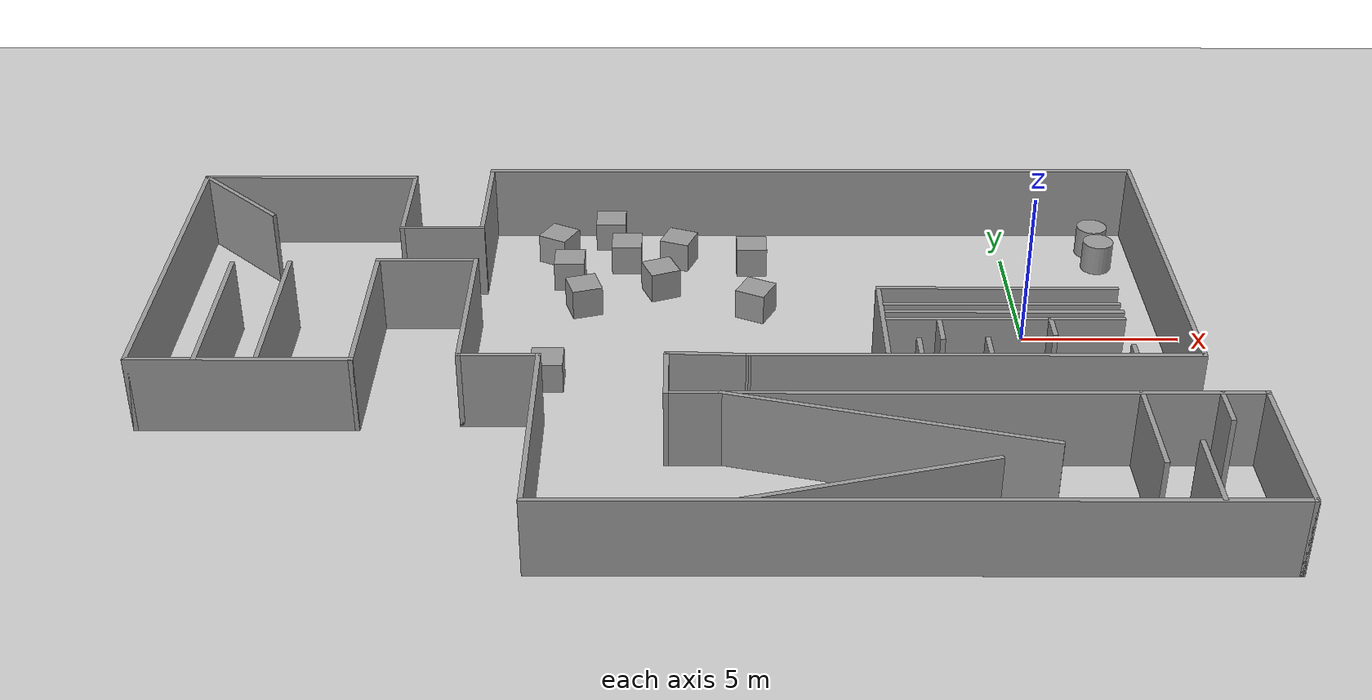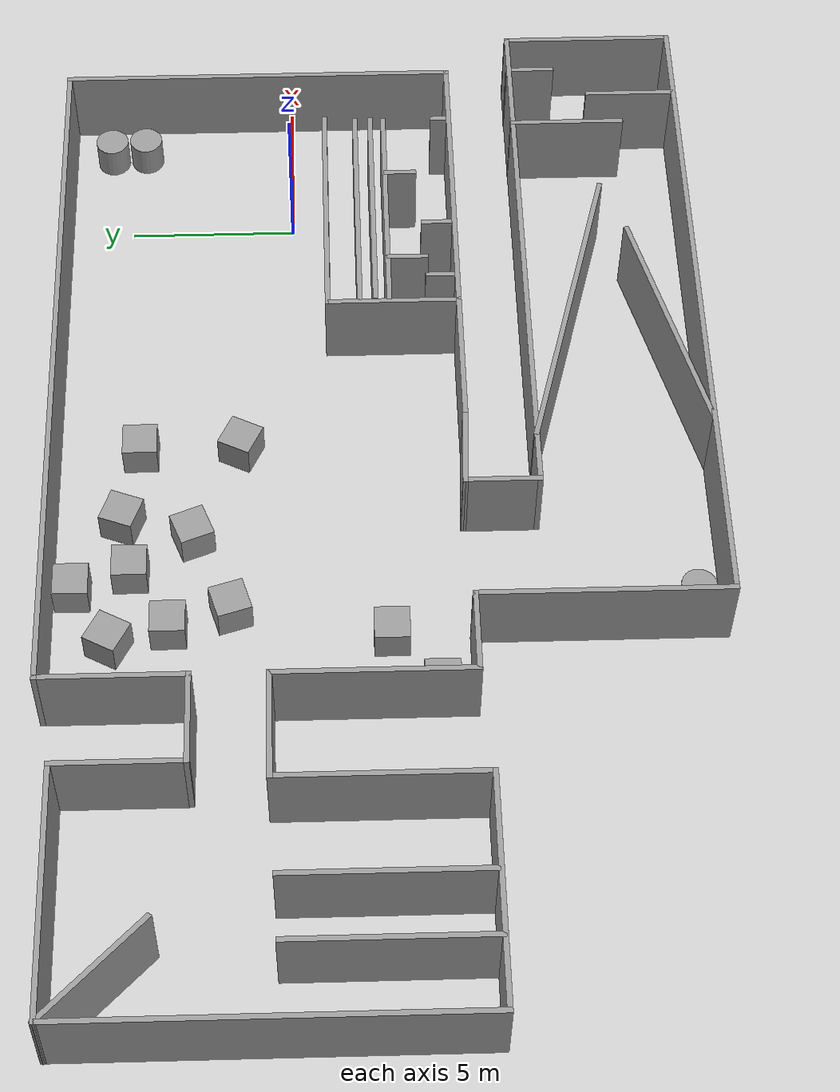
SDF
<sdf version="1.7">
 <world name="default">
  <light name="sun" type="directional">
   <pose>0 0 10 0 -0 0</pose>
   <diffuse>0.8 0.8 0.8 1</diffuse>
   <specular>0.2 0.2 0.2 1</specular>
   <attenuation>
    <range>1000</range>
    <constant>0.9</constant>
    <linear>0.01</linear>
    <quadratic>0.001</quadratic>
   </attenuation>
   <direction>-0.5 0.1 -0.9</direction>
   <spot><inner_angle>0</inner_angle><outer_angle>0</outer_angle><falloff>0</falloff></spot>
  </light>
  <model name="ground_plane">
   <static>1</static>
   <link name="link">
    <collision name="collision">
     <geometry><plane><normal>0 0 1</normal><size>100 100</size></plane></geometry>
     <surface>
      <contact><collide_bitmask>65535</collide_bitmask></contact>
      <friction><ode><mu>100</mu><mu2>50</mu2></ode></friction>
     </surface>
    </collision>
    <visual name="visual">
     <cast_shadows>0</cast_shadows>
     <geometry><plane><normal>0 0 1</normal><size>100 100</size></plane></geometry>
     <material>
      <script><uri>file://media/materials/scripts/gazebo.material</uri><name>Gazebo/Grey</name></script>
     </material>
    </visual>
   </link>
  </model>
  <gravity>0 0 -9.8</gravity>
  <magnetic_field>6e-06 2.3e-05 -4.2e-05</magnetic_field>
  <atmosphere type="adiabatic"/>
  <physics type="ode">
   <max_step_size>0.001</max_step_size>
   <real_time_factor>1</real_time_factor>
   <real_time_update_rate>1000</real_time_update_rate>
  </physics>
  <scene><ambient>0.4 0.4 0.4 1</ambient><background>0.7 0.7 0.7 1</background><shadows>1</shadows></scene>
  <spherical_coordinates>
   <surface_model>EARTH_WGS84</surface_model>
   <latitude_deg>0</latitude_deg>
   <longitude_deg>0</longitude_deg>
   <elevation>0</elevation>
   <heading_deg>0</heading_deg>
  </spherical_coordinates>
  <model name="Untitled">
   <pose>-10.6675 -2.513 0 0 -0 0</pose>
   <link name="Wall_0">
    <collision name="Wall_0_Collision">
     <geometry><box><size>13.5 0.15 2.5</size></box></geometry>
     <pose>0 0 1.25 0 -0 0</pose>
    </collision>
    <visual name="Wall_0_Visual">
     <pose>0 0 1.25 0 -0 0</pose>
     <geometry><box><size>13.5 0.15 2.5</size></box></geometry>
     <material>
      <script><uri>file://media/materials/scripts/gazebo.material</uri><name>Gazebo/Grey</name></script>
      <ambient>1 1 1 1</ambient>
     </material>
     <meta><layer>0</layer></meta>
    </visual>
    <pose>8.44053 -2.375 0 0 -0 3.14159</pose>
   </link>
   <link name="Wall_10">
    <collision name="Wall_10_Collision">
     <geometry><box><size>6 0.15 2.5</size></box></geometry>
     <pose>0 0 1.25 0 -0 0</pose>
    </collision>
    <visual name="Wall_10_Visual">
     <pose>0 0 1.25 0 -0 0</pose>
     <geometry><box><size>6 0.15 2.5</size></box></geometry>
     <material>
      <script><uri>file://media/materials/scripts/gazebo.material</uri><name>Gazebo/Grey</name></script>
      <ambient>1 1 1 1</ambient>
     </material>
     <meta><layer>0</layer></meta>
    </visual>
    <pose>-9.83447 0.299999 0 0 -0 1.5708</pose>
   </link>
   <link name="Wall_11">
    <collision name="Wall_11_Collision">
     <geometry><box><size>3.25 0.15 2.5</size></box></geometry>
     <pose>0 0 1.25 0 -0 0</pose>
    </collision>
    <visual name="Wall_11_Visual">
     <pose>0 0 1.25 0 -0 0</pose>
     <geometry><box><size>3.25 0.15 2.5</size></box></geometry>
     <material>
      <script><uri>file://media/materials/scripts/gazebo.material</uri><name>Gazebo/Grey</name></script>
      <ambient>1 1 1 1</ambient>
     </material>
     <meta><layer>0</layer></meta>
    </visual>
    <pose>-8.28447 3.225 0 0 -0 0</pose>
   </link>
   <link name="Wall_12">
    <collision name="Wall_12_Collision">
     <geometry><box><size>5.75 0.15 2.5</size></box></geometry>
     <pose>0 0 1.25 0 -0 0</pose>
    </collision>
    <visual name="Wall_12_Visual">
     <pose>0 0 1.25 0 -0 0</pose>
     <geometry><box><size>5.75 0.15 2.5</size></box></geometry>
     <material>
      <script><uri>file://media/materials/scripts/gazebo.material</uri><name>Gazebo/Grey</name></script>
      <ambient>1 1 1 1</ambient>
     </material>
     <meta><layer>0</layer></meta>
    </visual>
    <pose>-6.73447 0.424999 0 0 -0 -1.5708</pose>
   </link>
   <link name="Wall_15">
    <collision name="Wall_15_Collision">
     <geometry><box><size>2.5 0.15 2.5</size></box></geometry>
     <pose>0 0 1.25 0 -0 0</pose>
    </collision>
    <visual name="Wall_15_Visual">
     <pose>0 0 1.25 0 -0 0</pose>
     <geometry><box><size>2.5 0.15 2.5</size></box></geometry>
     <material>
      <script><uri>file://media/materials/scripts/gazebo.material</uri><name>Gazebo/Grey</name></script>
      <ambient>1 1 1 1</ambient>
     </material>
     <meta><layer>0</layer></meta>
    </visual>
    <pose>-5.55947 -2.375 0 0 -0 0</pose>
   </link>
   <link name="Wall_16">
    <collision name="Wall_16_Collision">
     <geometry><box><size>7.25 0.15 2.5</size></box></geometry>
     <pose>0 0 1.25 0 -0 0</pose>
    </collision>
    <visual name="Wall_16_Visual">
     <pose>0 0 1.25 0 -0 0</pose>
     <geometry><box><size>7.25 0.15 2.5</size></box></geometry>
     <material>
      <script><uri>file://media/materials/scripts/gazebo.material</uri><name>Gazebo/Grey</name></script>
      <ambient>1 1 1 1</ambient>
     </material>
     <meta><layer>0</layer></meta>
    </visual>
    <pose>-4.38447 -5.925 0 0 -0 -1.5708</pose>
   </link>
   <link name="Wall_17">
    <collision name="Wall_17_Collision">
     <geometry><box><size>21 0.15 2.5</size></box></geometry>
     <pose>0 0 1.25 0 -0 0</pose>
    </collision>
    <visual name="Wall_17_Visual">
     <pose>0 0 1.25 0 -0 0</pose>
     <geometry><box><size>21 0.15 2.5</size></box></geometry>
     <material>
      <script><uri>file://media/materials/scripts/gazebo.material</uri><name>Gazebo/Grey</name></script>
      <ambient>1 1 1 1</ambient>
     </material>
     <meta><layer>0</layer></meta>
    </visual>
    <pose>6.04053 -9.475 0 0 -0 0</pose>
   </link>
   <link name="Wall_18">
    <collision name="Wall_18_Collision">
     <geometry><box><size>5.25 0.15 2.5</size></box></geometry>
     <pose>0 0 1.25 0 -0 0</pose>
    </collision>
    <visual name="Wall_18_Visual">
     <pose>0 0 1.25 0 -0 0</pose>
     <geometry><box><size>5.25 0.15 2.5</size></box></geometry>
     <material>
      <script><uri>file://media/materials/scripts/gazebo.material</uri><name>Gazebo/Grey</name></script>
      <ambient>1 1 1 1</ambient>
     </material>
     <meta><layer>0</layer></meta>
    </visual>
    <pose>16.4655 -6.925 0 0 -0 1.5708</pose>
   </link>
   <link name="Wall_19">
    <collision name="Wall_19_Collision">
     <geometry><box><size>17.25 0.15 2.5</size></box></geometry>
     <pose>0 0 1.25 0 -0 0</pose>
    </collision>
    <visual name="Wall_19_Visual">
     <pose>0 0 1.25 0 -0 0</pose>
     <geometry><box><size>17.25 0.15 2.5</size></box></geometry>
     <material>
      <script><uri>file://media/materials/scripts/gazebo.material</uri><name>Gazebo/Grey</name></script>
      <ambient>1 1 1 1</ambient>
     </material>
     <meta><layer>0</layer></meta>
    </visual>
    <pose>7.91553 -4.375 0 0 -0 3.14159</pose>
   </link>
   <link name="Wall_2">
    <collision name="Wall_2_Collision">
     <geometry><box><size>12 0.15 2.5</size></box></geometry>
     <pose>0 0 1.25 0 -0 0</pose>
    </collision>
    <visual name="Wall_2_Visual">
     <pose>0 0 1.25 0 -0 0</pose>
     <geometry><box><size>12 0.15 2.5</size></box></geometry>
     <material>
      <script><uri>file://media/materials/scripts/gazebo.material</uri><name>Gazebo/Grey</name></script>
      <ambient>1 1 1 1</ambient>
     </material>
     <meta><layer>0</layer></meta>
    </visual>
    <pose>15.1155 3.55 0 0 -0 1.5708</pose>
   </link>
   <link name="Wall_20">
    <collision name="Wall_20_Collision">
     <geometry><box><size>2.25 0.15 2.5</size></box></geometry>
     <pose>0 0 1.25 0 -0 0</pose>
    </collision>
    <visual name="Wall_20_Visual">
     <pose>0 0 1.25 0 -0 0</pose>
     <geometry><box><size>2.25 0.15 2.5</size></box></geometry>
     <material>
      <script><uri>file://media/materials/scripts/gazebo.material</uri><name>Gazebo/Grey</name></script>
      <ambient>1 1 1 1</ambient>
     </material>
     <meta><layer>0</layer></meta>
    </visual>
    <pose>-0.634467 -3.325 0 0 -0 1.5708</pose>
   </link>
   <link name="Wall_21">
    <collision name="Wall_21_Collision">
     <geometry><box><size>2.55208 0.15 2.5</size></box></geometry>
     <pose>0 0 1.25 0 -0 0</pose>
    </collision>
    <visual name="Wall_21_Visual">
     <pose>0 0 1.25 0 -0 0</pose>
     <geometry><box><size>2.55208 0.15 2.5</size></box></geometry>
     <material>
      <script><uri>file://media/materials/scripts/gazebo.material</uri><name>Gazebo/Grey</name></script>
      <ambient>1 1 1 1</ambient>
     </material>
     <meta><layer>0</layer></meta>
    </visual>
    <pose>0.565533 -2.325 0 0 -0 -0.041643</pose>
   </link>
   <link name="Wall_25">
    <collision name="Wall_25_Collision">
     <geometry><box><size>2.75 0.15 2.5</size></box></geometry>
     <pose>0 0 1.25 0 -0 0</pose>
    </collision>
    <visual name="Wall_25_Visual">
     <pose>0 0 1.25 0 -0 0</pose>
     <geometry><box><size>2.75 0.15 2.5</size></box></geometry>
     <material>
      <script><uri>file://media/materials/scripts/gazebo.material</uri><name>Gazebo/Grey</name></script>
      <ambient>1 1 1 1</ambient>
     </material>
     <meta><layer>0</layer></meta>
    </visual>
    <pose>14.0768 -8.10186 0 0 -0 1.5708</pose>
   </link>
   <link name="Wall_28">
    <collision name="Wall_28_Collision">
     <geometry><box><size>9.75 0.15 2.5</size></box></geometry>
     <pose>0 0 1.25 0 -0 0</pose>
    </collision>
    <visual name="Wall_28_Visual">
     <pose>0 0 1.25 0 -0 0</pose>
     <geometry><box><size>9.75 0.15 2.5</size></box></geometry>
     <material>
      <script><uri>file://media/materials/scripts/gazebo.material</uri><name>Gazebo/Grey</name></script>
      <ambient>1 1 1 1</ambient>
     </material>
     <meta><layer>0</layer></meta>
    </visual>
    <pose>5.58774 -5.6119 0 0 -0 -0.261799</pose>
   </link>
   <link name="Wall_3">
    <collision name="Wall_3_Collision">
     <geometry><box><size>22 0.15 2.5</size></box></geometry>
     <pose>0 0 1.25 0 -0 0</pose>
    </collision>
    <visual name="Wall_3_Visual">
     <pose>0 0 1.25 0 -0 0</pose>
     <geometry><box><size>22 0.15 2.5</size></box></geometry>
     <material>
      <script><uri>file://media/materials/scripts/gazebo.material</uri><name>Gazebo/Grey</name></script>
      <ambient>1 1 1 1</ambient>
     </material>
     <meta><layer>0</layer></meta>
    </visual>
    <pose>4.19053 9.475 0 0 -0 3.14159</pose>
   </link>
   <link name="Wall_30">
    <collision name="Wall_30_Collision">
     <geometry><box><size>7.5 0.15 2.5</size></box></geometry>
     <pose>0 0 1.25 0 -0 0</pose>
    </collision>
    <visual name="Wall_30_Visual">
     <pose>0 0 1.25 0 -0 0</pose>
     <geometry><box><size>7.5 0.15 2.5</size></box></geometry>
     <material>
      <script><uri>file://media/materials/scripts/gazebo.material</uri><name>Gazebo/Grey</name></script>
      <ambient>1 1 1 1</ambient>
     </material>
     <meta><layer>0</layer></meta>
    </visual>
    <pose>4.91611 -8.50258 0 0 -0 0.261799</pose>
   </link>
   <link name="Wall_32">
    <collision name="Wall_32_Collision">
     <geometry><box><size>3.5 0.15 2.5</size></box></geometry>
     <pose>0 0 1.25 0 -0 0</pose>
    </collision>
    <visual name="Wall_32_Visual">
     <pose>0 0 1.25 0 -0 0</pose>
     <geometry><box><size>3.5 0.15 2.5</size></box></geometry>
     <material>
      <script><uri>file://media/materials/scripts/gazebo.material</uri><name>Gazebo/Grey</name></script>
      <ambient>1 1 1 1</ambient>
     </material>
     <meta><layer>0</layer></meta>
    </visual>
    <pose>12.8922 -6.04386 0 0 -0 -1.5708</pose>
   </link>
   <link name="Wall_4">
    <collision name="Wall_4_Collision">
     <geometry><box><size>4.25 0.15 2.5</size></box></geometry>
     <pose>0 0 1.25 0 -0 0</pose>
    </collision>
    <visual name="Wall_4_Visual">
     <pose>0 0 1.25 0 -0 0</pose>
     <geometry><box><size>4.25 0.15 2.5</size></box></geometry>
     <material>
      <script><uri>file://media/materials/scripts/gazebo.material</uri><name>Gazebo/Grey</name></script>
      <ambient>1 1 1 1</ambient>
     </material>
     <meta><layer>0</layer></meta>
    </visual>
    <pose>-6.73447 7.425 0 0 -0 -1.5708</pose>
   </link>
   <link name="Wall_5">
    <collision name="Wall_5_Collision">
     <geometry><box><size>2.75 0.15 2.5</size></box></geometry>
     <pose>0 0 1.25 0 -0 0</pose>
    </collision>
    <visual name="Wall_5_Visual">
     <pose>0 0 1.25 0 -0 0</pose>
     <geometry><box><size>2.75 0.15 2.5</size></box></geometry>
     <material>
      <script><uri>file://media/materials/scripts/gazebo.material</uri><name>Gazebo/Grey</name></script>
      <ambient>1 1 1 1</ambient>
     </material>
     <meta><layer>0</layer></meta>
    </visual>
    <pose>-8.03447 5.375 0 0 -0 3.14159</pose>
   </link>
   <link name="Wall_57">
    <collision name="Wall_57_Collision">
     <geometry><box><size>1 0.15 2.5</size></box></geometry>
     <pose>0 0 1.25 0 -0 0</pose>
    </collision>
    <visual name="Wall_57_Visual">
     <pose>0 0 1.25 0 -0 0</pose>
     <geometry><box><size>1 0.15 2.5</size></box></geometry>
     <material>
      <script><uri>file://media/materials/scripts/gazebo.material</uri><name>Gazebo/Grey</name></script>
      <ambient>1 1 1 1</ambient>
     </material>
     <meta><layer>0</layer></meta>
    </visual>
    <pose>6.83873 -1.93218 0 0 -0 1.5708</pose>
   </link>
   <link name="Wall_59">
    <collision name="Wall_59_Collision">
     <geometry><box><size>1.5 0.15 2.5</size></box></geometry>
     <pose>0 0 1.25 0 -0 0</pose>
    </collision>
    <visual name="Wall_59_Visual">
     <pose>0 0 1.25 0 -0 0</pose>
     <geometry><box><size>1.5 0.15 2.5</size></box></geometry>
     <material>
      <script><uri>file://media/materials/scripts/gazebo.material</uri><name>Gazebo/Grey</name></script>
      <ambient>1 1 1 1</ambient>
     </material>
     <meta><layer>0</layer></meta>
    </visual>
    <pose>15.1612 -5.02929 0 0 -0 -1.5708</pose>
   </link>
   <link name="Wall_6">
    <collision name="Wall_6_Collision">
     <geometry><box><size>3.75 0.15 2.5</size></box></geometry>
     <pose>0 0 1.25 0 -0 0</pose>
    </collision>
    <visual name="Wall_6_Visual">
     <pose>0 0 1.25 0 -0 0</pose>
     <geometry><box><size>3.75 0.15 2.5</size></box></geometry>
     <material>
      <script><uri>file://media/materials/scripts/gazebo.material</uri><name>Gazebo/Grey</name></script>
      <ambient>1 1 1 1</ambient>
     </material>
     <meta><layer>0</layer></meta>
    </visual>
    <pose>-9.33447 7.175 0 0 -0 1.5708</pose>
   </link>
   <link name="Wall_61">
    <collision name="Wall_61_Collision">
     <geometry><box><size>4 0.15 2.5</size></box></geometry>
     <pose>0 0 1.25 0 -0 0</pose>
    </collision>
    <visual name="Wall_61_Visual">
     <pose>0 0 1.25 0 -0 0</pose>
     <geometry><box><size>4 0.15 2.5</size></box></geometry>
     <material>
      <script><uri>file://media/materials/scripts/gazebo.material</uri><name>Gazebo/Grey</name></script>
      <ambient>1 1 1 1</ambient>
     </material>
     <meta><layer>0</layer></meta>
    </visual>
    <pose>5.86797 -0.433426 0 0 -0 1.5708</pose>
   </link>
   <link name="Wall_62">
    <collision name="Wall_62_Collision">
     <geometry><box><size>7.5 0.15 2.5</size></box></geometry>
     <pose>0 0 1.25 0 -0 0</pose>
    </collision>
    <visual name="Wall_62_Visual">
     <pose>0 0 1.25 0 -0 0</pose>
     <geometry><box><size>7.5 0.15 2.5</size></box></geometry>
     <material>
      <script><uri>file://media/materials/scripts/gazebo.material</uri><name>Gazebo/Grey</name></script>
      <ambient>1 1 1 1</ambient>
     </material>
     <meta><layer>0</layer></meta>
    </visual>
    <pose>9.54297 1.49157 0 0 -0 0</pose>
   </link>
   <link name="Wall_64">
    <collision name="Wall_64_Collision">
     <geometry><box><size>7.25 0.15 2.5</size></box></geometry>
     <pose>0 0 1.25 0 -0 0</pose>
    </collision>
    <visual name="Wall_64_Visual">
     <pose>0 0 1.25 0 -0 0</pose>
     <geometry><box><size>7.25 0.15 2.5</size></box></geometry>
     <material>
      <script><uri>file://media/materials/scripts/gazebo.material</uri><name>Gazebo/Grey</name></script>
      <ambient>1 1 1 1</ambient>
     </material>
     <meta><layer>0</layer></meta>
    </visual>
    <pose>9.55299 0.541816 0 0 -0 3.14159</pose>
   </link>
   <link name="Wall_67">
    <collision name="Wall_67_Collision">
     <geometry><box><size>7.25 0.15 2.5</size></box></geometry>
     <pose>0 0 1.25 0 -0 0</pose>
    </collision>
    <visual name="Wall_67_Visual">
     <pose>0 0 1.25 0 -0 0</pose>
     <geometry><box><size>7.25 0.15 2.5</size></box></geometry>
     <material>
      <script><uri>file://media/materials/scripts/gazebo.material</uri><name>Gazebo/Grey</name></script>
      <ambient>1 1 1 1</ambient>
     </material>
     <meta><layer>0</layer></meta>
    </visual>
    <pose>9.58417 0.074035 0 0 -0 3.14159</pose>
   </link>
   <link name="Wall_69">
    <collision name="Wall_69_Collision">
     <geometry><box><size>7.25 0.15 2.5</size></box></geometry>
     <pose>0 0 1.25 0 -0 0</pose>
    </collision>
    <visual name="Wall_69_Visual">
     <pose>0 0 1.25 0 -0 0</pose>
     <geometry><box><size>7.25 0.15 2.5</size></box></geometry>
     <material>
      <script><uri>file://media/materials/scripts/gazebo.material</uri><name>Gazebo/Grey</name></script>
      <ambient>1 1 1 1</ambient>
     </material>
     <meta><layer>0</layer></meta>
    </visual>
    <pose>9.55299 -0.331375 0 0 -0 3.14159</pose>
   </link>
   <link name="Wall_7">
    <collision name="Wall_7_Collision">
     <geometry><box><size>7.25 0.15 2.5</size></box></geometry>
     <pose>0 0 1.25 0 -0 0</pose>
    </collision>
    <visual name="Wall_7_Visual">
     <pose>0 0 1.25 0 -0 0</pose>
     <geometry><box><size>7.25 0.15 2.5</size></box></geometry>
     <material>
      <script><uri>file://media/materials/scripts/gazebo.material</uri><name>Gazebo/Grey</name></script>
      <ambient>1 1 1 1</ambient>
     </material>
     <meta><layer>0</layer></meta>
    </visual>
    <pose>-12.8845 8.975 0 0 -0 3.14159</pose>
   </link>
   <link name="Wall_71">
    <collision name="Wall_71_Collision">
     <geometry><box><size>1.25 0.15 2.5</size></box></geometry>
     <pose>0 0 1.25 0 -0 0</pose>
    </collision>
    <visual name="Wall_71_Visual">
     <pose>0 0 1.25 0 -0 0</pose>
     <geometry><box><size>1.25 0.15 2.5</size></box></geometry>
     <material>
      <script><uri>file://media/materials/scripts/gazebo.material</uri><name>Gazebo/Grey</name></script>
      <ambient>1 1 1 1</ambient>
     </material>
     <meta><layer>0</layer></meta>
    </visual>
    <pose>7.55199 -0.91256 0 0 -0 -1.5708</pose>
   </link>
   <link name="Wall_73">
    <collision name="Wall_73_Collision">
     <geometry><box><size>1 0.15 2.5</size></box></geometry>
     <pose>0 0 1.25 0 -0 0</pose>
    </collision>
    <visual name="Wall_73_Visual">
     <pose>0 0 1.25 0 -0 0</pose>
     <geometry><box><size>1 0.15 2.5</size></box></geometry>
     <material>
      <script><uri>file://media/materials/scripts/gazebo.material</uri><name>Gazebo/Grey</name></script>
      <ambient>1 1 1 1</ambient>
     </material>
     <meta><layer>0</layer></meta>
    </visual>
    <pose>8.89296 -1.87105 0 0 -0 1.5708</pose>
   </link>
   <link name="Wall_75">
    <collision name="Wall_75_Collision">
     <geometry><box><size>1 0.15 2.5</size></box></geometry>
     <pose>0 0 1.25 0 -0 0</pose>
    </collision>
    <visual name="Wall_75_Visual">
     <pose>0 0 1.25 0 -0 0</pose>
     <geometry><box><size>1 0.15 2.5</size></box></geometry>
     <material>
      <script><uri>file://media/materials/scripts/gazebo.material</uri><name>Gazebo/Grey</name></script>
      <ambient>1 1 1 1</ambient>
     </material>
     <meta><layer>0</layer></meta>
    </visual>
    <pose>10.92 -0.78756 0 0 -0 -1.5708</pose>
   </link>
   <link name="Wall_77">
    <collision name="Wall_77_Collision">
     <geometry><box><size>0.5 0.15 2.5</size></box></geometry>
     <pose>0 0 1.25 0 -0 0</pose>
    </collision>
    <visual name="Wall_77_Visual">
     <pose>0 0 1.25 0 -0 0</pose>
     <geometry><box><size>0.5 0.15 2.5</size></box></geometry>
     <material>
      <script><uri>file://media/materials/scripts/gazebo.material</uri><name>Gazebo/Grey</name></script>
      <ambient>1 1 1 1</ambient>
     </material>
     <meta><layer>0</layer></meta>
    </visual>
    <pose>13.1342 -2.05868 0 0 -0 1.5708</pose>
   </link>
   <link name="Wall_79">
    <collision name="Wall_79_Collision">
     <geometry><box><size>5.75 0.15 2.5</size></box></geometry>
     <pose>0 0 1.25 0 -0 0</pose>
    </collision>
    <visual name="Wall_79_Visual">
     <pose>0 0 1.25 0 -0 0</pose>
     <geometry><box><size>5.75 0.15 2.5</size></box></geometry>
     <material>
      <script><uri>file://media/materials/scripts/gazebo.material</uri><name>Gazebo/Grey</name></script>
      <ambient>1 1 1 1</ambient>
     </material>
     <meta><layer>0</layer></meta>
    </visual>
    <pose>-12.6154 0.267923 0 0 -0 1.5708</pose>
   </link>
   <link name="Wall_8">
    <collision name="Wall_8_Collision">
     <geometry><box><size>11.75 0.15 2.5</size></box></geometry>
     <pose>0 0 1.25 0 -0 0</pose>
    </collision>
    <visual name="Wall_8_Visual">
     <pose>0 0 1.25 0 -0 0</pose>
     <geometry><box><size>11.75 0.15 2.5</size></box></geometry>
     <material>
      <script><uri>file://media/materials/scripts/gazebo.material</uri><name>Gazebo/Grey</name></script>
      <ambient>1 1 1 1</ambient>
     </material>
     <meta><layer>0</layer></meta>
    </visual>
    <pose>-16.4345 3.175 0 0 -0 -1.5708</pose>
   </link>
   <link name="Wall_81">
    <collision name="Wall_81_Collision">
     <geometry><box><size>5.75 0.15 2.5</size></box></geometry>
     <pose>0 0 1.25 0 -0 0</pose>
    </collision>
    <visual name="Wall_81_Visual">
     <pose>0 0 1.25 0 -0 0</pose>
     <geometry><box><size>5.75 0.15 2.5</size></box></geometry>
     <material>
      <script><uri>file://media/materials/scripts/gazebo.material</uri><name>Gazebo/Grey</name></script>
      <ambient>1 1 1 1</ambient>
     </material>
     <meta><layer>0</layer></meta>
    </visual>
    <pose>-14.4242 0.205552 0 0 -0 1.5708</pose>
   </link>
   <link name="Wall_83">
    <collision name="Wall_83_Collision">
     <geometry><box><size>4 0.15 2.5</size></box></geometry>
     <pose>0 0 1.25 0 -0 0</pose>
    </collision>
    <visual name="Wall_83_Visual">
     <pose>0 0 1.25 0 -0 0</pose>
     <geometry><box><size>4 0.15 2.5</size></box></geometry>
     <material>
      <script><uri>file://media/materials/scripts/gazebo.material</uri><name>Gazebo/Grey</name></script>
      <ambient>1 1 1 1</ambient>
     </material>
     <meta><layer>0</layer></meta>
    </visual>
    <pose>-15.0733 7.61382 0 0 -0 -0.785398</pose>
   </link>
   <link name="Wall_9">
    <collision name="Wall_9_Collision">
     <geometry><box><size>6.75 0.15 2.5</size></box></geometry>
     <pose>0 0 1.25 0 -0 0</pose>
    </collision>
    <visual name="Wall_9_Visual">
     <pose>0 0 1.25 0 -0 0</pose>
     <geometry><box><size>6.75 0.15 2.5</size></box></geometry>
     <material>
      <script><uri>file://media/materials/scripts/gazebo.material</uri><name>Gazebo/Grey</name></script>
      <ambient>1 1 1 1</ambient>
     </material>
     <meta><layer>0</layer></meta>
    </visual>
    <pose>-13.1345 -2.625 0 0 -0 0</pose>
   </link>
   <static>1</static>
  </model>
  <model name="unit_box">
   <pose>-12.752 4.70423 0.499995 0 1e-05 0</pose>
   <link name="link">
    <inertial>
     <mass>1</mass>
     <inertia>
      <ixx>0.166667</ixx>
      <ixy>0</ixy>
      <ixz>0</ixz>
      <iyy>0.166667</iyy>
      <iyz>0</iyz>
      <izz>0.166667</izz>
     </inertia>
    </inertial>
    <collision name="collision"><geometry><box><size>1 1 1</size></box></geometry></collision>
    <visual name="visual">
     <geometry><box><size>1 1 1</size></box></geometry>
     <material>
      <script><name>Gazebo/Grey</name><uri>file://media/materials/scripts/gazebo.material</uri></script>
     </material>
    </visual>
   </link>
  </model>
  <model name="unit_box_0">
   <pose>-10.9961 4.9809 0.499995 -1e-05 -0 -0.35788</pose>
   <link name="link">
    <inertial>
     <mass>1</mass>
     <inertia>
      <ixx>0.166667</ixx>
      <ixy>0</ixy>
      <ixz>0</ixz>
      <iyy>0.166667</iyy>
      <iyz>0</iyz>
      <izz>0.166667</izz>
     </inertia>
    </inertial>
    <collision name="collision"><geometry><box><size>1 1 1</size></box></geometry></collision>
    <visual name="visual">
     <geometry><box><size>1 1 1</size></box></geometry>
     <material>
      <script><name>Gazebo/Grey</name><uri>file://media/materials/scripts/gazebo.material</uri></script>
     </material>
    </visual>
   </link>
  </model>
  <model name="unit_box_1">
   <pose>-11.5862 2.95667 0.499995 1e-05 -0 0.371024</pose>
   <link name="link">
    <inertial>
     <mass>1</mass>
     <inertia>
      <ixx>0.166667</ixx>
      <ixy>0</ixy>
      <ixz>0</ixz>
      <iyy>0.166667</iyy>
      <iyz>0</iyz>
      <izz>0.166667</izz>
     </inertia>
    </inertial>
    <collision name="collision"><geometry><box><size>1 1 1</size></box></geometry></collision>
    <visual name="visual">
     <geometry><box><size>1 1 1</size></box></geometry>
     <material>
      <script><name>Gazebo/Grey</name><uri>file://media/materials/scripts/gazebo.material</uri></script>
     </material>
    </visual>
   </link>
  </model>
  <model name="unit_box_2">
   <pose>-8.54899 4.51591 0.499995 -1e-05 -0 -0</pose>
   <link name="link">
    <inertial>
     <mass>1</mass>
     <inertia>
      <ixx>0.166667</ixx>
      <ixy>0</ixy>
      <ixz>0</ixz>
      <iyy>0.166667</iyy>
      <iyz>0</iyz>
      <izz>0.166667</izz>
     </inertia>
    </inertial>
    <collision name="collision"><geometry><box><size>1 1 1</size></box></geometry></collision>
    <visual name="visual">
     <geometry><box><size>1 1 1</size></box></geometry>
     <material>
      <script><name>Gazebo/Grey</name><uri>file://media/materials/scripts/gazebo.material</uri></script>
     </material>
    </visual>
   </link>
  </model>
  <model name="unit_box_3">
   <pose>-8.47722 1.5933 0.499999 -5e-06 -3e-06 -0.455956</pose>
   <link name="link">
    <inertial>
     <mass>1</mass>
     <inertia>
      <ixx>0.166667</ixx>
      <ixy>0</ixy>
      <ixz>0</ixz>
      <iyy>0.166667</iyy>
      <iyz>0</iyz>
      <izz>0.166667</izz>
     </inertia>
    </inertial>
    <collision name="collision"><geometry><box><size>1 1 1</size></box></geometry></collision>
    <visual name="visual">
     <geometry><box><size>1 1 1</size></box></geometry>
     <material>
      <script><name>Gazebo/Grey</name><uri>file://media/materials/scripts/gazebo.material</uri></script>
     </material>
    </visual>
   </link>
  </model>
  <model name="unit_box_4">
   <pose>-13.3368 6.32653 0.499995 -1e-05 -0 -0</pose>
   <link name="link">
    <inertial>
     <mass>1</mass>
     <inertia>
      <ixx>0.166667</ixx>
      <ixy>0</ixy>
      <ixz>0</ixz>
      <iyy>0.166667</iyy>
      <iyz>0</iyz>
      <izz>0.166667</izz>
     </inertia>
    </inertial>
    <collision name="collision"><geometry><box><size>1 1 1</size></box></geometry></collision>
    <visual name="visual">
     <geometry><box><size>1 1 1</size></box></geometry>
     <material>
      <script><name>Gazebo/Grey</name><uri>file://media/materials/scripts/gazebo.material</uri></script>
     </material>
    </visual>
   </link>
  </model>
  <model name="unit_box_5">
   <pose>-14.082 1.85526 0.5 0 -0 0.296463</pose>
   <link name="link">
    <inertial>
     <mass>1</mass>
     <inertia>
      <ixx>0.166667</ixx>
      <ixy>0</ixy>
      <ixz>0</ixz>
      <iyy>0.166667</iyy>
      <iyz>0</iyz>
      <izz>0.166667</izz>
     </inertia>
    </inertial>
    <collision name="collision"><geometry><box><size>1 1 1</size></box></geometry></collision>
    <visual name="visual">
     <geometry><box><size>1 1 1</size></box></geometry>
     <material>
      <script><name>Gazebo/Grey</name><uri>file://media/materials/scripts/gazebo.material</uri></script>
     </material>
    </visual>
   </link>
  </model>
  <model name="unit_box_6">
   <pose>-14.6281 3.58846 0.499995 -1e-05 -0 -0</pose>
   <link name="link">
    <inertial>
     <mass>1</mass>
     <inertia>
      <ixx>0.166667</ixx>
      <ixy>0</ixy>
      <ixz>0</ixz>
      <iyy>0.166667</iyy>
      <iyz>0</iyz>
      <izz>0.166667</izz>
     </inertia>
    </inertial>
    <collision name="collision"><geometry><box><size>1 1 1</size></box></geometry></collision>
    <visual name="visual">
     <geometry><box><size>1 1 1</size></box></geometry>
     <material>
      <script><name>Gazebo/Grey</name><uri>file://media/materials/scripts/gazebo.material</uri></script>
     </material>
    </visual>
   </link>
  </model>
  <model name="unit_box_7">
   <pose>-15.0695 5.24986 0.5 -0 -0 -0.490082</pose>
   <link name="link">
    <inertial>
     <mass>1</mass>
     <inertia>
      <ixx>0.166667</ixx>
      <ixy>0</ixy>
      <ixz>0</ixz>
      <iyy>0.166667</iyy>
      <iyz>0</iyz>
      <izz>0.166667</izz>
     </inertia>
    </inertial>
    <collision name="collision"><geometry><box><size>1 1 1</size></box></geometry></collision>
    <visual name="visual">
     <geometry><box><size>1 1 1</size></box></geometry>
     <material>
      <script><name>Gazebo/Grey</name><uri>file://media/materials/scripts/gazebo.material</uri></script>
     </material>
    </visual>
   </link>
  </model>
  <model name="unit_cylinder">
   <pose>3.12605 5.70857 0.499992 -3e-06 -4e-06 -0</pose>
   <link name="link">
    <inertial>
     <mass>1</mass>
     <inertia><ixx>0.145833</ixx><ixy>0</ixy><ixz>0</ixz><iyy>0.145833</iyy><iyz>0</iyz><izz>0.125</izz></inertia>
    </inertial>
    <collision name="collision">
     <geometry><cylinder><radius>0.5</radius><length>1</length></cylinder></geometry>
    </collision>
    <visual name="visual">
     <geometry><cylinder><radius>0.5</radius><length>1</length></cylinder></geometry>
     <material>
      <script><name>Gazebo/Grey</name><uri>file://media/materials/scripts/gazebo.material</uri></script>
     </material>
    </visual>
   </link>
  </model>
  <model name="unit_cylinder_0">
   <pose>3.16669 4.6471 0.499993 -3e-06 -3e-06 0</pose>
   <link name="link">
    <inertial>
     <mass>1</mass>
     <inertia><ixx>0.145833</ixx><ixy>0</ixy><ixz>0</ixz><iyy>0.145833</iyy><iyz>0</iyz><izz>0.125</izz></inertia>
    </inertial>
    <collision name="collision">
     <geometry><cylinder><radius>0.5</radius><length>1</length></cylinder></geometry>
    </collision>
    <visual name="visual">
     <geometry><cylinder><radius>0.5</radius><length>1</length></cylinder></geometry>
     <material>
      <script><name>Gazebo/Grey</name><uri>file://media/materials/scripts/gazebo.material</uri></script>
     </material>
    </visual>
   </link>
  </model>
  <model name="unit_cylinder_1">
   <pose>-13.9932 -11.2316 0.499997 3e-06 4e-06 -0</pose>
   <link name="link">
    <inertial>
     <mass>1</mass>
     <inertia><ixx>0.145833</ixx><ixy>0</ixy><ixz>0</ixz><iyy>0.145833</iyy><iyz>0</iyz><izz>0.125</izz></inertia>
    </inertial>
    <collision name="collision">
     <geometry><cylinder><radius>0.5</radius><length>1</length></cylinder></geometry>
    </collision>
    <visual name="visual">
     <geometry><cylinder><radius>0.5</radius><length>1</length></cylinder></geometry>
     <material>
      <script><name>Gazebo/Grey</name><uri>file://media/materials/scripts/gazebo.material</uri></script>
     </material>
    </visual>
   </link>
  </model>
  <model name="unit_box_8">
   <pose>-16.7064 -3.97883 0.499995 -1e-05 -0 0</pose>
   <link name="link">
    <inertial>
     <mass>1</mass>
     <inertia>
      <ixx>0.166667</ixx>
      <ixy>0</ixy>
      <ixz>0</ixz>
      <iyy>0.166667</iyy>
      <iyz>0</iyz>
      <izz>0.166667</izz>
     </inertia>
    </inertial>
    <collision name="collision"><geometry><box><size>1 1 1</size></box></geometry></collision>
    <visual name="visual">
     <geometry><box><size>1 1 1</size></box></geometry>
     <material>
      <script><name>Gazebo/Grey</name><uri>file://media/materials/scripts/gazebo.material</uri></script>
     </material>
    </visual>
   </link>
  </model>
  <model name="unit_box_9">
   <pose>-14.9976 -2.63101 0.5 0 -0 0</pose>
   <link name="link">
    <inertial>
     <mass>1</mass>
     <inertia>
      <ixx>0.166667</ixx>
      <ixy>0</ixy>
      <ixz>0</ixz>
      <iyy>0.166667</iyy>
      <iyz>0</iyz>
      <izz>0.166667</izz>
     </inertia>
    </inertial>
    <collision name="collision"><geometry><box><size>1 1 1</size></box></geometry></collision>
    <visual name="visual">
     <geometry><box><size>1 1 1</size></box></geometry>
     <material>
      <script><name>Gazebo/Grey</name><uri>file://media/materials/scripts/gazebo.material</uri></script>
     </material>
    </visual>
   </link>
  </model>
 </world>
</sdf>
